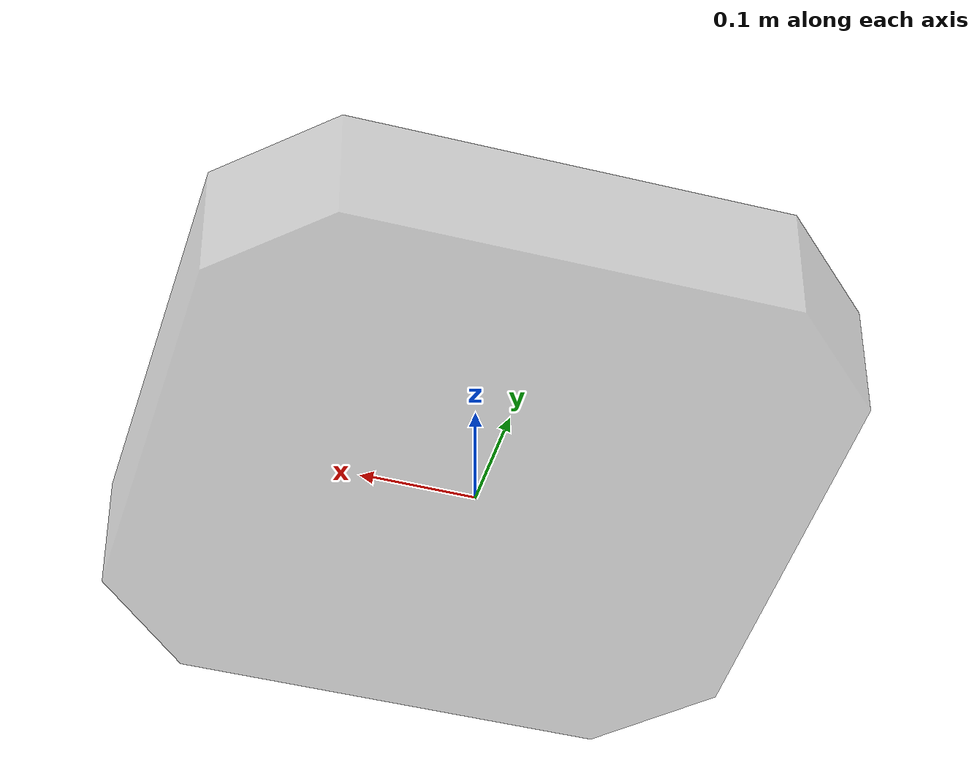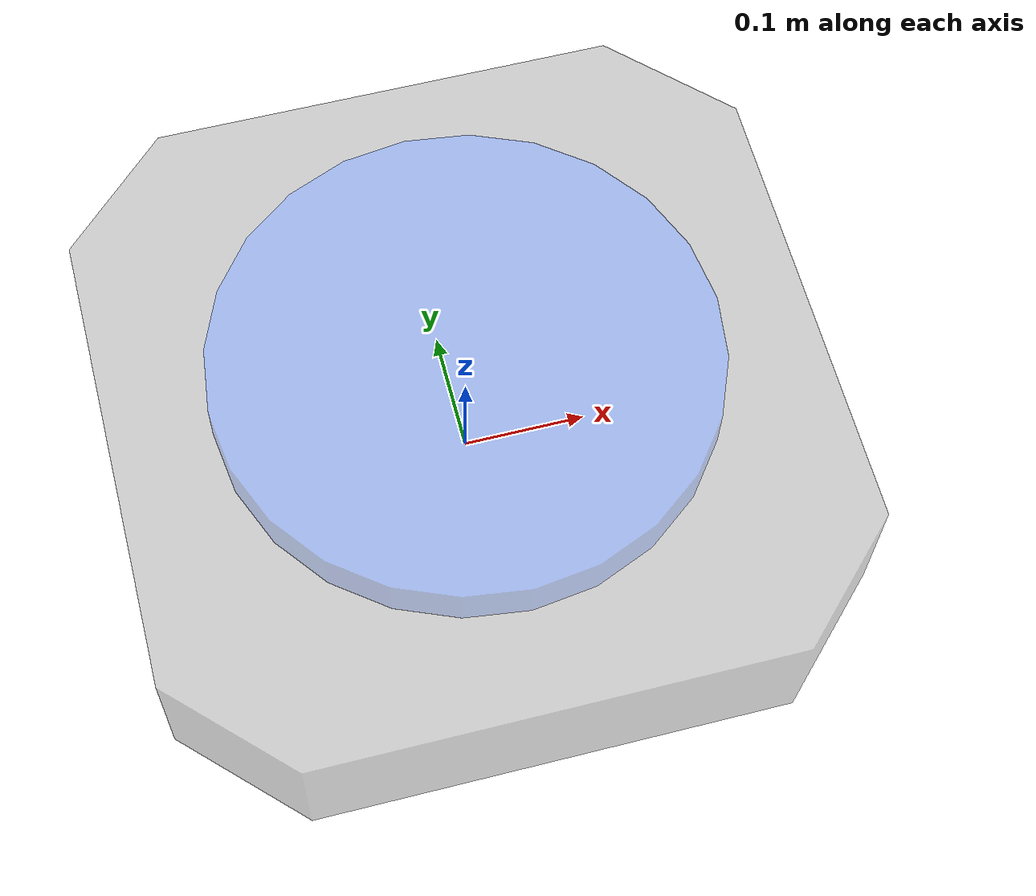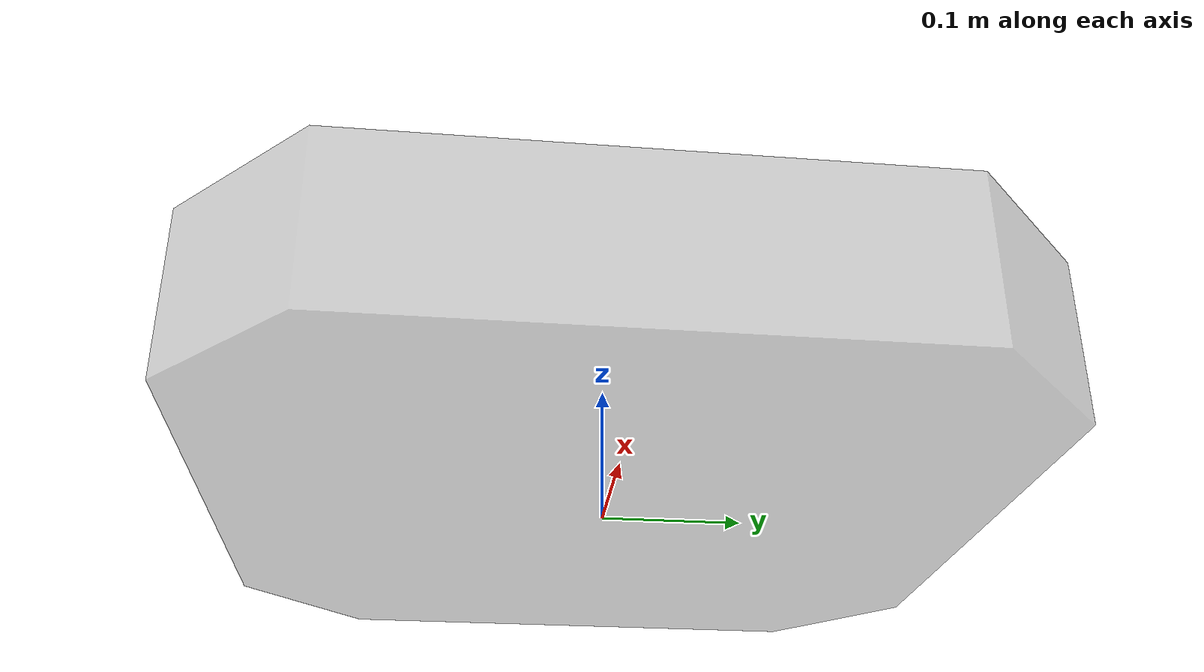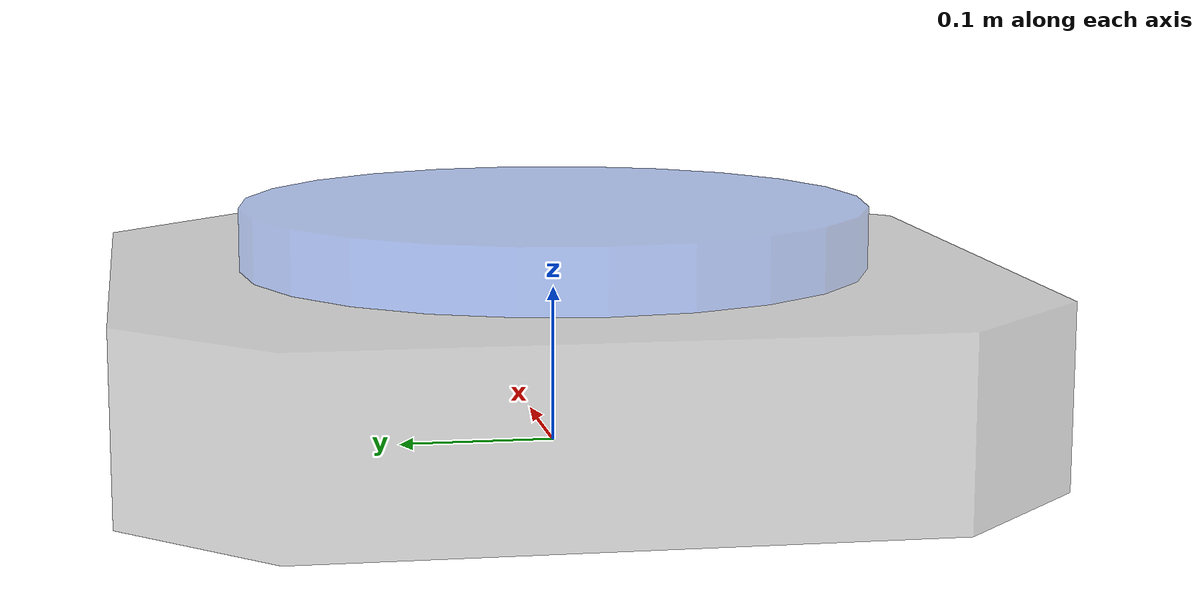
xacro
<?xml version="1.0"?>
<robot xmlns:xacro="http://www.ros.org/wiki/xacro" name="rm_sentry_2027">
  <xacro:arg name="use_sim_lidar" default="false"/>
  <xacro:arg name="gimbal_joint_height" default="0.115"/>
  <xacro:arg name="sim_lidar_x" default="0.12"/>
  <xacro:arg name="sim_lidar_y" default="0.0"/>
  <xacro:arg name="sim_lidar_z" default="0.065"/>

  <link name="base_link">
    <visual>
      <origin xyz="0 0 0" rpy="0 0 0"/>
      <geometry>
        <mesh filename="package://rm_description/meshes/new_car_octagonal_chassis.obj"/>
      </geometry>
      <material name="phase1_gray">
        <color rgba="0.5 0.5 0.5 0.4"/>
      </material>
    </visual>
  </link>

  <xacro:if value="$(arg use_sim_lidar)">
    <link name="sim_lidar_link">
      <visual>
        <geometry><box size="0.08 0.08 0.06"/></geometry>
        <material name="phase1_lidar">
          <color rgba="0.15 0.15 0.15 0.7"/>
        </material>
      </visual>
    </link>
    <joint name="gimbal_yaw_link_to_sim_lidar_link" type="fixed">
      <parent link="gimbal_yaw_link"/>
      <child link="sim_lidar_link"/>
      <origin
        xyz="$(arg sim_lidar_x) $(arg sim_lidar_y) $(arg sim_lidar_z)"
        rpy="0 0 0"/>
    </joint>
  </xacro:if>

  <link name="gimbal_yaw_link">
    <visual>
      <origin xyz="0 0 0.02" rpy="0 0 0"/>
      <geometry>
        <cylinder radius="0.20" length="0.04"/>
      </geometry>
      <material name="phase1_blue">
        <color rgba="0.1 0.3 0.8 0.4"/>
      </material>
    </visual>
  </link>

  <joint name="gimbal_yaw_joint" type="continuous">
    <parent link="base_link"/>
    <child link="gimbal_yaw_link"/>
    <!-- Phase 1 zero-yaw joint state is a placeholder. Real robot requires dynamic yaw. -->
    <origin xyz="0 0 $(arg gimbal_joint_height)" rpy="0 0 0"/>
    <axis xyz="0 0 1"/>
  </joint>

  <link name="mid360_left_frame"/>

  <joint name="gimbal_yaw_link_to_mid360_left_frame" type="fixed">
    <parent link="gimbal_yaw_link"/>
    <child link="mid360_left_frame"/>
    <origin xyz="0 0.12 0" rpy="0 0 0"/>
  </joint>

  <link name="mid360_right_frame"/>

  <joint name="gimbal_yaw_link_to_mid360_right_frame" type="fixed">
    <parent link="gimbal_yaw_link"/>
    <child link="mid360_right_frame"/>
    <!-- Phase 1 placeholder only. Replace with measured 2027 extrinsic. -->
    <origin xyz="0 -0.12 0" rpy="0 0 0"/>
  </joint>

  <link name="lio_imu_link"/>

  <joint name="gimbal_yaw_link_to_lio_imu_link" type="fixed">
    <parent link="gimbal_yaw_link"/>
    <child link="lio_imu_link"/>
    <origin xyz="0 0.12 0" rpy="0 0 0"/>
  </joint>

  <link name="base_imu_link"/>

  <joint name="base_link_to_base_imu_link" type="fixed">
    <parent link="base_link"/>
    <child link="base_imu_link"/>
    <!-- Optional chassis IMU placeholder. Use only for diagnostics/fusion. -->
    <origin xyz="0 0 0.05" rpy="0 0 0"/>
  </joint>
</robot>
